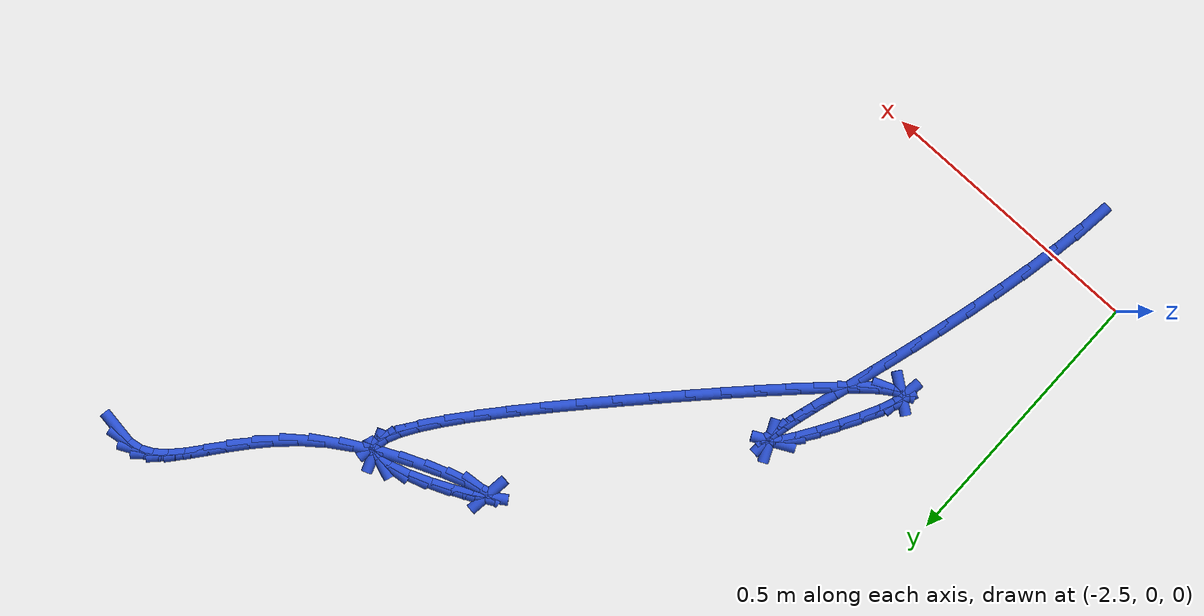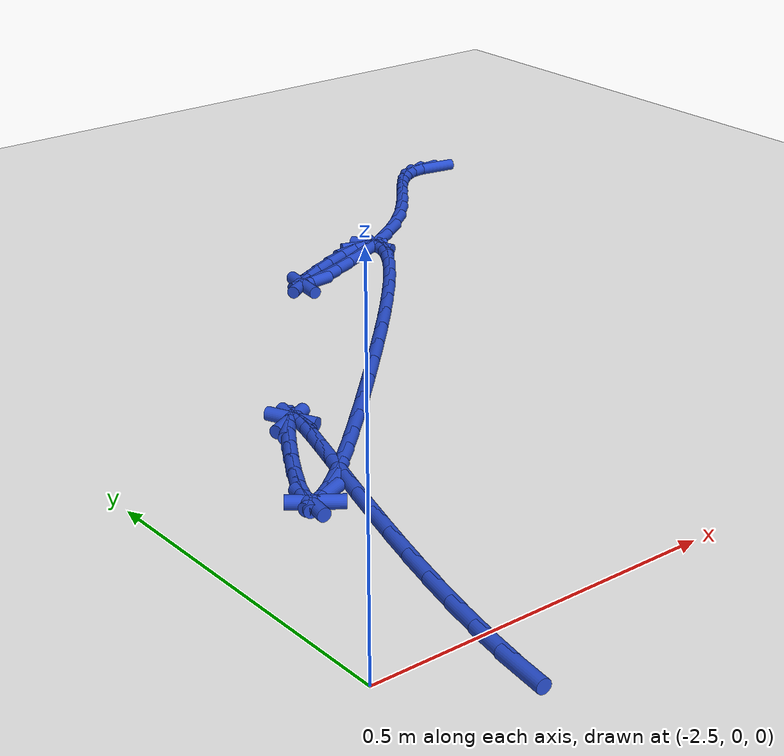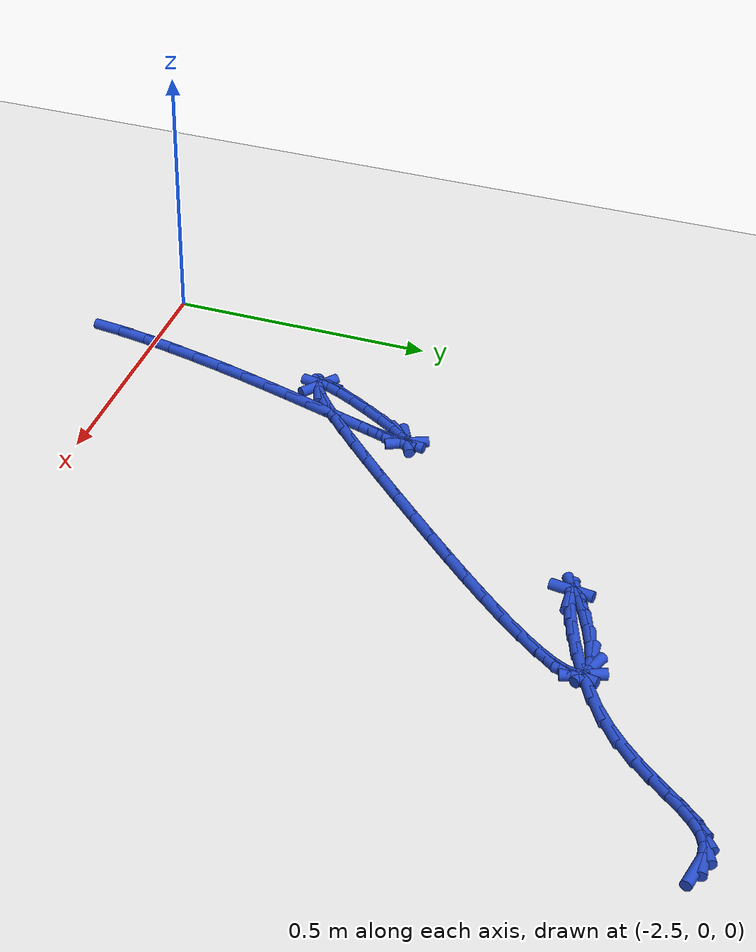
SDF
<sdf version="1.6">
 <world name="default">
  <model name="ground_plane">
   <static>1</static>
   <link name="link">
    <collision name="collision">
     <geometry><plane><normal>0 0 1</normal><size>100 100</size></plane></geometry>
     <surface><friction><ode><mu>100</mu><mu2>50</mu2></ode></friction></surface>
    </collision>
    <visual name="visual">
     <cast_shadows>0</cast_shadows>
     <geometry><plane><normal>0 0 1</normal><size>100 100</size></plane></geometry>
     <material>
      <script><uri>file://media/materials/scripts/gazebo.material</uri><name>Gazebo/WhiteGlow</name></script>
     </material>
    </visual>
   </link>
  </model>
  <model name="line">
   <link name="link_68">
    <pose>-1.3350973054093536 1.3106945747411376 0.01 0 1.57 -0.1702562619580545</pose>
    <collision name="collision">
     <geometry><cylinder><radius>0.01</radius><length>0.08</length></cylinder></geometry>
    </collision>
    <visual name="visual">
     <material>
      <script><name>Gazebo/Blue</name><uri>file://media/materials/scripts/gazebo.material</uri></script>
     </material>
     <geometry><cylinder><radius>0.01</radius><length>0.08</length></cylinder></geometry>
    </visual>
   </link>
   <link name="link_69">
    <pose>-1.3612721494354727 1.3151945708552326 0.01 0 1.57 0.12736923555929164</pose>
    <collision name="collision">
     <geometry><cylinder><radius>0.01</radius><length>0.08</length></cylinder></geometry>
    </collision>
    <visual name="visual">
     <material>
      <script><name>Gazebo/Blue</name><uri>file://media/materials/scripts/gazebo.material</uri></script>
     </material>
     <geometry><cylinder><radius>0.01</radius><length>0.08</length></cylinder></geometry>
    </visual>
   </link>
   <link name="link_70">
    <pose>-1.3851577878362082 1.3121357162470983 0.01 0 1.57 0.4457632040662082</pose>
    <collision name="collision">
     <geometry><cylinder><radius>0.01</radius><length>0.08</length></cylinder></geometry>
    </collision>
    <visual name="visual">
     <material>
      <script><name>Gazebo/Blue</name><uri>file://media/materials/scripts/gazebo.material</uri></script>
     </material>
     <geometry><cylinder><radius>0.01</radius><length>0.08</length></cylinder></geometry>
    </visual>
   </link>
   <link name="link_71">
    <pose>-1.4071448924169663 1.3016293918662203 0.01 0 1.57 0.6769019145013381</pose>
    <collision name="collision">
     <geometry><cylinder><radius>0.01</radius><length>0.08</length></cylinder></geometry>
    </collision>
    <visual name="visual">
     <material>
      <script><name>Gazebo/Blue</name><uri>file://media/materials/scripts/gazebo.material</uri></script>
     </material>
     <geometry><cylinder><radius>0.01</radius><length>0.08</length></cylinder></geometry>
    </visual>
   </link>
   <link name="link_72">
    <pose>-1.4281467614833094 1.2847533370910302 0.01 0 1.57 0.8132384338599417</pose>
    <collision name="collision">
     <geometry><cylinder><radius>0.01</radius><length>0.08</length></cylinder></geometry>
    </collision>
    <visual name="visual">
     <material>
      <script><name>Gazebo/Blue</name><uri>file://media/materials/scripts/gazebo.material</uri></script>
     </material>
     <geometry><cylinder><radius>0.01</radius><length>0.08</length></cylinder></geometry>
    </visual>
   </link>
   <link name="link_73">
    <pose>-1.4490901231234126 1.2626101235341154 0.01 0 1.57 0.8785664679247477</pose>
    <collision name="collision">
     <geometry><cylinder><radius>0.01</radius><length>0.08</length></cylinder></geometry>
    </collision>
    <visual name="visual">
     <material>
      <script><name>Gazebo/Blue</name><uri>file://media/materials/scripts/gazebo.material</uri></script>
     </material>
     <geometry><cylinder><radius>0.01</radius><length>0.08</length></cylinder></geometry>
    </visual>
   </link>
   <link name="link_74">
    <pose>-1.470901705425451 1.2363023228080614 0.01 0 1.57 0.8937617831276791</pose>
    <collision name="collision">
     <geometry><cylinder><radius>0.01</radius><length>0.08</length></cylinder></geometry>
    </collision>
    <visual name="visual">
     <material>
      <script><name>Gazebo/Blue</name><uri>file://media/materials/scripts/gazebo.material</uri></script>
     </material>
     <geometry><cylinder><radius>0.01</radius><length>0.08</length></cylinder></geometry>
    </visual>
   </link>
   <link name="link_75">
    <pose>-1.4945082364776003 1.2069325065254557 0.01 0 1.57 0.8719189081028719</pose>
    <collision name="collision">
     <geometry><cylinder><radius>0.01</radius><length>0.08</length></cylinder></geometry>
    </collision>
    <visual name="visual">
     <material>
      <script><name>Gazebo/Blue</name><uri>file://media/materials/scripts/gazebo.material</uri></script>
     </material>
     <geometry><cylinder><radius>0.01</radius><length>0.08</length></cylinder></geometry>
    </visual>
   </link>
   <link name="link_76">
    <pose>-1.5208364443680358 1.175603246298886 0.01 0 1.57 0.8209273206403028</pose>
    <collision name="collision">
     <geometry><cylinder><radius>0.01</radius><length>0.08</length></cylinder></geometry>
    </collision>
    <visual name="visual">
     <material>
      <script><name>Gazebo/Blue</name><uri>file://media/materials/scripts/gazebo.material</uri></script>
     </material>
     <geometry><cylinder><radius>0.01</radius><length>0.08</length></cylinder></geometry>
    </visual>
   </link>
   <link name="link_77">
    <pose>-1.5508130571849326 1.1434171137409364 0.01 0 1.57 0.7461458583727737</pose>
    <collision name="collision">
     <geometry><cylinder><radius>0.01</radius><length>0.08</length></cylinder></geometry>
    </collision>
    <visual name="visual">
     <material>
      <script><name>Gazebo/Blue</name><uri>file://media/materials/scripts/gazebo.material</uri></script>
     </material>
     <geometry><cylinder><radius>0.01</radius><length>0.08</length></cylinder></geometry>
    </visual>
   </link>
   <link name="link_78">
    <pose>-1.5853648030164664 1.1114766804641956 0.01 0 1.57 0.652318640092156</pose>
    <collision name="collision">
     <geometry><cylinder><radius>0.01</radius><length>0.08</length></cylinder></geometry>
    </collision>
    <visual name="visual">
     <material>
      <script><name>Gazebo/Blue</name><uri>file://media/materials/scripts/gazebo.material</uri></script>
     </material>
     <geometry><cylinder><radius>0.01</radius><length>0.08</length></cylinder></geometry>
    </visual>
   </link>
   <link name="link_79">
    <pose>-1.6254143857306464 1.080884026823018 0.01 0 1.57 0.557162237522482</pose>
    <collision name="collision">
     <geometry><cylinder><radius>0.01</radius><length>0.08</length></cylinder></geometry>
    </collision>
    <visual name="visual">
     <material>
      <script><name>Gazebo/Blue</name><uri>file://media/materials/scripts/gazebo.material</uri></script>
     </material>
     <geometry><cylinder><radius>0.01</radius><length>0.08</length></cylinder></geometry>
    </visual>
   </link>
   <link name="link_80">
    <pose>-1.6707997255913554 1.0526088077941178 0.01 0 1.57 0.4849428474515673</pose>
    <collision name="collision">
     <geometry><cylinder><radius>0.01</radius><length>0.08</length></cylinder></geometry>
    </collision>
    <visual name="visual">
     <material>
      <script><name>Gazebo/Blue</name><uri>file://media/materials/scripts/gazebo.material</uri></script>
     </material>
     <geometry><cylinder><radius>0.01</radius><length>0.08</length></cylinder></geometry>
    </visual>
   </link>
   <link name="link_81">
    <pose>-1.7188133773173808 1.0273099518717472 0.01 0 1.57 0.4281146502719504</pose>
    <collision name="collision">
     <geometry><cylinder><radius>0.01</radius><length>0.08</length></cylinder></geometry>
    </collision>
    <visual name="visual">
     <material>
      <script><name>Gazebo/Blue</name><uri>file://media/materials/scripts/gazebo.material</uri></script>
     </material>
     <geometry><cylinder><radius>0.01</radius><length>0.08</length></cylinder></geometry>
    </visual>
   </link>
   <link name="link_82">
    <pose>-1.766383234428024 1.0056018713933235 0.01 0 1.57 0.378181644333244</pose>
    <collision name="collision">
     <geometry><cylinder><radius>0.01</radius><length>0.08</length></cylinder></geometry>
    </collision>
    <visual name="visual">
     <material>
      <script><name>Gazebo/Blue</name><uri>file://media/materials/scripts/gazebo.material</uri></script>
     </material>
     <geometry><cylinder><radius>0.01</radius><length>0.08</length></cylinder></geometry>
    </visual>
   </link>
   <link name="link_83">
    <pose>-1.810437190442585 0.9880989786962638 0.01 0 1.57 0.3264189245833968</pose>
    <collision name="collision">
     <geometry><cylinder><radius>0.01</radius><length>0.08</length></cylinder></geometry>
    </collision>
    <visual name="visual">
     <material>
      <script><name>Gazebo/Blue</name><uri>file://media/materials/scripts/gazebo.material</uri></script>
     </material>
     <geometry><cylinder><radius>0.01</radius><length>0.08</length></cylinder></geometry>
    </visual>
   </link>
   <link name="link_84">
    <pose>-1.8479031388803657 0.9754156861179856 0.01 0 1.57 0.2550336951135034</pose>
    <collision name="collision">
     <geometry><cylinder><radius>0.01</radius><length>0.08</length></cylinder></geometry>
    </collision>
    <visual name="visual">
     <material>
      <script><name>Gazebo/Blue</name><uri>file://media/materials/scripts/gazebo.material</uri></script>
     </material>
     <geometry><cylinder><radius>0.01</radius><length>0.08</length></cylinder></geometry>
    </visual>
   </link>
   <link name="link_85">
    <pose>-1.8757089732606678 0.9681664059959068 0.01 0 1.57 0.07949815419244698</pose>
    <collision name="collision">
     <geometry><cylinder><radius>0.01</radius><length>0.08</length></cylinder></geometry>
    </collision>
    <visual name="visual">
     <material>
      <script><name>Gazebo/Blue</name><uri>file://media/materials/scripts/gazebo.material</uri></script>
     </material>
     <geometry><cylinder><radius>0.01</radius><length>0.08</length></cylinder></geometry>
    </visual>
   </link>
   <link name="link_86">
    <pose>-1.8907825871027912 0.9669655506674435 0.01 0 1.57 1.437804291611866</pose>
    <collision name="collision">
     <geometry><cylinder><radius>0.01</radius><length>0.08</length></cylinder></geometry>
    </collision>
    <visual name="visual">
     <material>
      <script><name>Gazebo/Blue</name><uri>file://media/materials/scripts/gazebo.material</uri></script>
     </material>
     <geometry><cylinder><radius>0.01</radius><length>0.08</length></cylinder></geometry>
    </visual>
   </link>
   <link name="link_87">
    <pose>-1.890051873926039 0.9724275324700142 0.01 0 1.57 0.5877394359640918</pose>
    <collision name="collision">
     <geometry><cylinder><radius>0.01</radius><length>0.08</length></cylinder></geometry>
    </collision>
    <visual name="visual">
     <material>
      <script><name>Gazebo/Blue</name><uri>file://media/materials/scripts/gazebo.material</uri></script>
     </material>
     <geometry><cylinder><radius>0.01</radius><length>0.08</length></cylinder></geometry>
    </visual>
   </link>
   <link name="link_88">
    <pose>-1.8717234997290118 0.9846394826409811 0.01 0 1.57 0.48206246042030065</pose>
    <collision name="collision">
     <geometry><cylinder><radius>0.01</radius><length>0.08</length></cylinder></geometry>
    </collision>
    <visual name="visual">
     <material>
      <script><name>Gazebo/Blue</name><uri>file://media/materials/scripts/gazebo.material</uri></script>
     </material>
     <geometry><cylinder><radius>0.01</radius><length>0.08</length></cylinder></geometry>
    </visual>
   </link>
   <link name="link_89">
    <pose>-1.8401992689408937 1.00113406752302 0.01 0 1.57 0.42797350168837456</pose>
    <collision name="collision">
     <geometry><cylinder><radius>0.01</radius><length>0.08</length></cylinder></geometry>
    </collision>
    <visual name="visual">
     <material>
      <script><name>Gazebo/Blue</name><uri>file://media/materials/scripts/gazebo.material</uri></script>
     </material>
     <geometry><cylinder><radius>0.01</radius><length>0.08</length></cylinder></geometry>
    </visual>
   </link>
   <link name="link_90">
    <pose>-1.801754475868277 1.0186714502813512 0.01 0 1.57 0.3739684753368205</pose>
    <collision name="collision">
     <geometry><cylinder><radius>0.01</radius><length>0.08</length></cylinder></geometry>
    </collision>
    <visual name="visual">
     <material>
      <script><name>Gazebo/Blue</name><uri>file://media/materials/scripts/gazebo.material</uri></script>
     </material>
     <geometry><cylinder><radius>0.01</radius><length>0.08</length></cylinder></geometry>
    </visual>
   </link>
   <link name="link_91">
    <pose>-1.762664817651042 1.0340116279794216 0.01 0 1.57 0.2878067374321136</pose>
    <collision name="collision">
     <geometry><cylinder><radius>0.01</radius><length>0.08</length></cylinder></geometry>
    </collision>
    <visual name="visual">
     <material>
      <script><name>Gazebo/Blue</name><uri>file://media/materials/scripts/gazebo.material</uri></script>
     </material>
     <geometry><cylinder><radius>0.01</radius><length>0.08</length></cylinder></geometry>
    </visual>
   </link>
   <link name="link_92">
    <pose>-1.7291991728930904 1.0439183213049854 0.01 0 1.57 0.09662714299805618</pose>
    <collision name="collision">
     <geometry><cylinder><radius>0.01</radius><length>0.08</length></cylinder></geometry>
    </collision>
    <visual name="visual">
     <material>
      <script><name>Gazebo/Blue</name><uri>file://media/materials/scripts/gazebo.material</uri></script>
     </material>
     <geometry><cylinder><radius>0.01</radius><length>0.08</length></cylinder></geometry>
    </visual>
   </link>
   <link name="link_93">
    <pose>-1.7057249403121948 1.0461936551945799 0.01 0 1.57 -0.3586536361080069</pose>
    <collision name="collision">
     <geometry><cylinder><radius>0.01</radius><length>0.08</length></cylinder></geometry>
    </collision>
    <visual name="visual">
     <material>
      <script><name>Gazebo/Blue</name><uri>file://media/materials/scripts/gazebo.material</uri></script>
     </material>
     <geometry><cylinder><radius>0.01</radius><length>0.08</length></cylinder></geometry>
    </visual>
   </link>
   <link name="link_94">
    <pose>-1.6921176941901852 1.0410927542788644 0.01 0 1.57 -1.2074080739607462</pose>
    <collision name="collision">
     <geometry><cylinder><radius>0.01</radius><length>0.08</length></cylinder></geometry>
    </collision>
    <visual name="visual">
     <material>
      <script><name>Gazebo/Blue</name><uri>file://media/materials/scripts/gazebo.material</uri></script>
     </material>
     <geometry><cylinder><radius>0.01</radius><length>0.08</length></cylinder></geometry>
    </visual>
   </link>
   <link name="link_95">
    <pose>-1.6876046086852141 1.0292248365703156 0.01 0 1.57 1.3625904140321572</pose>
    <collision name="collision">
     <geometry><cylinder><radius>0.01</radius><length>0.08</length></cylinder></geometry>
    </collision>
    <visual name="visual">
     <material>
      <script><name>Gazebo/Blue</name><uri>file://media/materials/scripts/gazebo.material</uri></script>
     </material>
     <geometry><cylinder><radius>0.01</radius><length>0.08</length></cylinder></geometry>
    </visual>
   </link>
   <link name="link_96">
    <pose>-1.6914128579554344 1.0111991200814106 0.01 0 1.57 1.121860512650516</pose>
    <collision name="collision">
     <geometry><cylinder><radius>0.01</radius><length>0.08</length></cylinder></geometry>
    </collision>
    <visual name="visual">
     <material>
      <script><name>Gazebo/Blue</name><uri>file://media/materials/scripts/gazebo.material</uri></script>
     </material>
     <geometry><cylinder><radius>0.01</radius><length>0.08</length></cylinder></geometry>
    </visual>
   </link>
   <link name="link_97">
    <pose>-1.7027696161589996 0.9876248228246249 0.01 0 1.57 1.0043820728874466</pose>
    <collision name="collision">
     <geometry><cylinder><radius>0.01</radius><length>0.08</length></cylinder></geometry>
    </collision>
    <visual name="visual">
     <material>
      <script><name>Gazebo/Blue</name><uri>file://media/materials/scripts/gazebo.material</uri></script>
     </material>
     <geometry><cylinder><radius>0.01</radius><length>0.08</length></cylinder></geometry>
    </visual>
   </link>
   <link name="link_98">
    <pose>-1.7209020574540614 0.9591111628124356 0.01 0 1.57 0.9370613674079857</pose>
    <collision name="collision">
     <geometry><cylinder><radius>0.01</radius><length>0.08</length></cylinder></geometry>
    </collision>
    <visual name="visual">
     <material>
      <script><name>Gazebo/Blue</name><uri>file://media/materials/scripts/gazebo.material</uri></script>
     </material>
     <geometry><cylinder><radius>0.01</radius><length>0.08</length></cylinder></geometry>
    </visual>
   </link>
   <link name="link_99">
    <pose>-1.7450373559987729 0.926267358057319 0.01 0 1.57 0.894164770032132</pose>
    <collision name="collision">
     <geometry><cylinder><radius>0.01</radius><length>0.08</length></cylinder></geometry>
    </collision>
    <visual name="visual">
     <material>
      <script><name>Gazebo/Blue</name><uri>file://media/materials/scripts/gazebo.material</uri></script>
     </material>
     <geometry><cylinder><radius>0.01</radius><length>0.08</length></cylinder></geometry>
    </visual>
   </link>
   <link name="link_100">
    <pose>-1.7744026859512871 0.8897026265717515 0.01 0 1.57 0.8648764615963829</pose>
    <collision name="collision">
     <geometry><cylinder><radius>0.01</radius><length>0.08</length></cylinder></geometry>
    </collision>
    <visual name="visual">
     <material>
      <script><name>Gazebo/Blue</name><uri>file://media/materials/scripts/gazebo.material</uri></script>
     </material>
     <geometry><cylinder><radius>0.01</radius><length>0.08</length></cylinder></geometry>
    </visual>
   </link>
   <link name="link_101">
    <pose>-1.8082252214697565 0.8500261863682103 0.01 0 1.57 0.8439615534080173</pose>
    <collision name="collision">
     <geometry><cylinder><radius>0.01</radius><length>0.08</length></cylinder></geometry>
    </collision>
    <visual name="visual">
     <material>
      <script><name>Gazebo/Blue</name><uri>file://media/materials/scripts/gazebo.material</uri></script>
     </material>
     <geometry><cylinder><radius>0.01</radius><length>0.08</length></cylinder></geometry>
    </visual>
   </link>
   <link name="link_102">
    <pose>-1.8457321367123347 0.8078472554591709 0.01 0 1.57 0.8286154717612767</pose>
    <collision name="collision">
     <geometry><cylinder><radius>0.01</radius><length>0.08</length></cylinder></geometry>
    </collision>
    <visual name="visual">
     <material>
      <script><name>Gazebo/Blue</name><uri>file://media/materials/scripts/gazebo.material</uri></script>
     </material>
     <geometry><cylinder><radius>0.01</radius><length>0.08</length></cylinder></geometry>
    </visual>
   </link>
   <link name="link_103">
    <pose>-1.8861506058371738 0.76377505185711 0.01 0 1.57 0.8172262364170614</pose>
    <collision name="collision">
     <geometry><cylinder><radius>0.01</radius><length>0.08</length></cylinder></geometry>
    </collision>
    <visual name="visual">
     <material>
      <script><name>Gazebo/Blue</name><uri>file://media/materials/scripts/gazebo.material</uri></script>
     </material>
     <geometry><cylinder><radius>0.01</radius><length>0.08</length></cylinder></geometry>
    </visual>
   </link>
   <link name="link_104">
    <pose>-1.9287078030024274 0.7184187935745044 0.01 0 1.57 0.8088279751640625</pose>
    <collision name="collision">
     <geometry><cylinder><radius>0.01</radius><length>0.08</length></cylinder></geometry>
    </collision>
    <visual name="visual">
     <material>
      <script><name>Gazebo/Blue</name><uri>file://media/materials/scripts/gazebo.material</uri></script>
     </material>
     <geometry><cylinder><radius>0.01</radius><length>0.08</length></cylinder></geometry>
    </visual>
   </link>
   <link name="link_105">
    <pose>-1.9726309023662472 0.6723876986238303 0.01 0 1.57 0.8028391437492124</pose>
    <collision name="collision">
     <geometry><cylinder><radius>0.01</radius><length>0.08</length></cylinder></geometry>
    </collision>
    <visual name="visual">
     <material>
      <script><name>Gazebo/Blue</name><uri>file://media/materials/scripts/gazebo.material</uri></script>
     </material>
     <geometry><cylinder><radius>0.01</radius><length>0.08</length></cylinder></geometry>
    </visual>
   </link>
   <link name="link_106">
    <pose>-2.017147078086786 0.6262909850175643 0.01 0 1.57 0.7984714207825216</pose>
    <collision name="collision">
     <geometry><cylinder><radius>0.01</radius><length>0.08</length></cylinder></geometry>
    </collision>
    <visual name="visual">
     <material>
      <script><name>Gazebo/Blue</name><uri>file://media/materials/scripts/gazebo.material</uri></script>
     </material>
     <geometry><cylinder><radius>0.01</radius><length>0.08</length></cylinder></geometry>
    </visual>
   </link>
   <link name="link_107">
    <pose>-2.061478427583553 0.5807851033612885 0.01 0 1.57 0.7928958342150697</pose>
    <collision name="collision">
     <geometry><cylinder><radius>0.01</radius><length>0.08</length></cylinder></geometry>
    </collision>
    <visual name="visual">
     <material>
      <script><name>Gazebo/Blue</name><uri>file://media/materials/scripts/gazebo.material</uri></script>
     </material>
     <geometry><cylinder><radius>0.01</radius><length>0.08</length></cylinder></geometry>
    </visual>
   </link>
   <link name="link_108">
    <pose>-2.1048187292050753 0.5367899771810107 0.01 0 1.57 0.7846742248726606</pose>
    <collision name="collision">
     <geometry><cylinder><radius>0.01</radius><length>0.08</length></cylinder></geometry>
    </collision>
    <visual name="visual">
     <material>
      <script><name>Gazebo/Blue</name><uri>file://media/materials/scripts/gazebo.material</uri></script>
     </material>
     <geometry><cylinder><radius>0.01</radius><length>0.08</length></cylinder></geometry>
    </visual>
   </link>
   <link name="link_109">
    <pose>-2.146351945637944 0.4953168522469569 0.01 0 1.57 0.7727729731272469</pose>
    <collision name="collision">
     <geometry><cylinder><radius>0.01</radius><length>0.08</length></cylinder></geometry>
    </collision>
    <visual name="visual">
     <material>
      <script><name>Gazebo/Blue</name><uri>file://media/materials/scripts/gazebo.material</uri></script>
     </material>
     <geometry><cylinder><radius>0.01</radius><length>0.08</length></cylinder></geometry>
    </visual>
   </link>
   <link name="link_110">
    <pose>-2.1852620299577055 0.4573770637478947 0.01 0 1.57 0.7552648694851226</pose>
    <collision name="collision">
     <geometry><cylinder><radius>0.01</radius><length>0.08</length></cylinder></geometry>
    </collision>
    <visual name="visual">
     <material>
      <script><name>Gazebo/Blue</name><uri>file://media/materials/scripts/gazebo.material</uri></script>
     </material>
     <geometry><cylinder><radius>0.01</radius><length>0.08</length></cylinder></geometry>
    </visual>
   </link>
   <link name="link_111">
    <pose>-2.2207329352399046 0.4239819468725913 0.01 0 1.57 0.7282834579382008</pose>
    <collision name="collision">
     <geometry><cylinder><radius>0.01</radius><length>0.08</length></cylinder></geometry>
    </collision>
    <visual name="visual">
     <material>
      <script><name>Gazebo/Blue</name><uri>file://media/materials/scripts/gazebo.material</uri></script>
     </material>
     <geometry><cylinder><radius>0.01</radius><length>0.08</length></cylinder></geometry>
    </visual>
   </link>
   <link name="link_112">
    <pose>-2.251948614560089 0.39614283680981377 0.01 0 1.57 0.6829944129559297</pose>
    <collision name="collision">
     <geometry><cylinder><radius>0.01</radius><length>0.08</length></cylinder></geometry>
    </collision>
    <visual name="visual">
     <material>
      <script><name>Gazebo/Blue</name><uri>file://media/materials/scripts/gazebo.material</uri></script>
     </material>
     <geometry><cylinder><radius>0.01</radius><length>0.08</length></cylinder></geometry>
    </visual>
   </link>
   <link name="link_113">
    <pose>-2.2780930209938037 0.3748710687483293 0.01 0 1.57 0.5944126310920766</pose>
    <collision name="collision">
     <geometry><cylinder><radius>0.01</radius><length>0.08</length></cylinder></geometry>
    </collision>
    <visual name="visual">
     <material>
      <script><name>Gazebo/Blue</name><uri>file://media/materials/scripts/gazebo.material</uri></script>
     </material>
     <geometry><cylinder><radius>0.01</radius><length>0.08</length></cylinder></geometry>
    </visual>
   </link>
   <link name="link_114">
    <pose>-2.298350107616596 0.3611779778769047 0.01 0 1.57 0.3600917427748077</pose>
    <collision name="collision">
     <geometry><cylinder><radius>0.01</radius><length>0.08</length></cylinder></geometry>
    </collision>
    <visual name="visual">
     <material>
      <script><name>Gazebo/Blue</name><uri>file://media/materials/scripts/gazebo.material</uri></script>
     </material>
     <geometry><cylinder><radius>0.01</radius><length>0.08</length></cylinder></geometry>
    </visual>
   </link>
   <link name="link_115">
    <pose>-2.3119038275040116 0.35607489938430714 0.01 0 1.57 -0.6405822637403422</pose>
    <collision name="collision">
     <geometry><cylinder><radius>0.01</radius><length>0.08</length></cylinder></geometry>
    </collision>
    <visual name="visual">
     <material>
      <script><name>Gazebo/Blue</name><uri>file://media/materials/scripts/gazebo.material</uri></script>
     </material>
     <geometry><cylinder><radius>0.01</radius><length>0.08</length></cylinder></geometry>
    </visual>
   </link>
   <link name="link_116">
    <pose>-2.317938133731597 0.36057316845930376 0.01 0 1.57 1.4197157445327446</pose>
    <collision name="collision">
     <geometry><cylinder><radius>0.01</radius><length>0.08</length></cylinder></geometry>
    </collision>
    <visual name="visual">
     <material>
      <script><name>Gazebo/Blue</name><uri>file://media/materials/scripts/gazebo.material</uri></script>
     </material>
     <geometry><cylinder><radius>0.01</radius><length>0.08</length></cylinder></geometry>
    </visual>
   </link>
   <link name="link_117">
    <pose>-2.3156378178998147 0.37568290178907193 0.01 0 1.57 1.1759806474920604</pose>
    <collision name="collision">
     <geometry><cylinder><radius>0.01</radius><length>0.08</length></cylinder></geometry>
    </collision>
    <visual name="visual">
     <material>
      <script><name>Gazebo/Blue</name><uri>file://media/materials/scripts/gazebo.material</uri></script>
     </material>
     <geometry><cylinder><radius>0.01</radius><length>0.08</length></cylinder></geometry>
    </visual>
   </link>
   <link name="link_118">
    <pose>-2.3049768843988563 0.40126737233641696 0.01 0 1.57 1.0957023036938187</pose>
    <collision name="collision">
     <geometry><cylinder><radius>0.01</radius><length>0.08</length></cylinder></geometry>
    </collision>
    <visual name="visual">
     <material>
      <script><name>Gazebo/Blue</name><uri>file://media/materials/scripts/gazebo.material</uri></script>
     </material>
     <geometry><cylinder><radius>0.01</radius><length>0.08</length></cylinder></geometry>
    </visual>
   </link>
   <link name="link_119">
    <pose>-2.288184053636705 0.4339134148856184 0.01 0 1.57 1.0540077608567002</pose>
    <collision name="collision">
     <geometry><cylinder><radius>0.01</radius><length>0.08</length></cylinder></geometry>
    </collision>
    <visual name="visual">
     <material>
      <script><name>Gazebo/Blue</name><uri>file://media/materials/scripts/gazebo.material</uri></script>
     </material>
     <geometry><cylinder><radius>0.01</radius><length>0.08</length></cylinder></geometry>
    </visual>
   </link>
   <link name="link_120">
    <pose>-2.2678880951459686 0.46962653326181175 0.01 0 1.57 1.0240827179628935</pose>
    <collision name="collision">
     <geometry><cylinder><radius>0.01</radius><length>0.08</length></cylinder></geometry>
    </collision>
    <visual name="visual">
     <material>
      <script><name>Gazebo/Blue</name><uri>file://media/materials/scripts/gazebo.material</uri></script>
     </material>
     <geometry><cylinder><radius>0.01</radius><length>0.08</length></cylinder></geometry>
    </visual>
   </link>
   <link name="link_121">
    <pose>-2.2467177784592605 0.5044122312901332 0.01 0 1.57 0.9943164230556358</pose>
    <collision name="collision">
     <geometry><cylinder><radius>0.01</radius><length>0.08</length></cylinder></geometry>
    </collision>
    <visual name="visual">
     <material>
      <script><name>Gazebo/Blue</name><uri>file://media/materials/scripts/gazebo.material</uri></script>
     </material>
     <geometry><cylinder><radius>0.01</radius><length>0.08</length></cylinder></geometry>
    </visual>
   </link>
   <link name="link_122">
    <pose>-2.227301873109191 0.5342760127957181 0.01 0 1.57 0.9489629614297959</pose>
    <collision name="collision">
     <geometry><cylinder><radius>0.01</radius><length>0.08</length></cylinder></geometry>
    </collision>
    <visual name="visual">
     <material>
      <script><name>Gazebo/Blue</name><uri>file://media/materials/scripts/gazebo.material</uri></script>
     </material>
     <geometry><cylinder><radius>0.01</radius><length>0.08</length></cylinder></geometry>
    </visual>
   </link>
   <link name="link_123">
    <pose>-2.2120441900095384 0.5555653950068998 0.01 0 1.57 0.8448970271386356</pose>
    <collision name="collision">
     <geometry><cylinder><radius>0.01</radius><length>0.08</length></cylinder></geometry>
    </collision>
    <visual name="visual">
     <material>
      <script><name>Gazebo/Blue</name><uri>file://media/materials/scripts/gazebo.material</uri></script>
     </material>
     <geometry><cylinder><radius>0.01</radius><length>0.08</length></cylinder></geometry>
    </visual>
   </link>
   <link name="link_124">
    <pose>-2.2014820370293107 0.5674656128697573 0.01 0 1.57 0.4603190550973021</pose>
    <collision name="collision">
     <geometry><cylinder><radius>0.01</radius><length>0.08</length></cylinder></geometry>
    </collision>
    <visual name="visual">
     <material>
      <script><name>Gazebo/Blue</name><uri>file://media/materials/scripts/gazebo.material</uri></script>
     </material>
     <geometry><cylinder><radius>0.01</radius><length>0.08</length></cylinder></geometry>
    </visual>
   </link>
   <link name="link_125">
    <pose>-2.1952291118478784 0.5705661020932765 0.01 0 1.57 -1.1411673160636104</pose>
    <collision name="collision">
     <geometry><cylinder><radius>0.01</radius><length>0.08</length></cylinder></geometry>
    </collision>
    <visual name="visual">
     <material>
      <script><name>Gazebo/Blue</name><uri>file://media/materials/scripts/gazebo.material</uri></script>
     </material>
     <geometry><cylinder><radius>0.01</radius><length>0.08</length></cylinder></geometry>
    </visual>
   </link>
   <link name="link_126">
    <pose>-2.192892528484894 0.5654663077822875 0.01 0 1.57 1.4776170693136244</pose>
    <collision name="collision">
     <geometry><cylinder><radius>0.01</radius><length>0.08</length></cylinder></geometry>
    </collision>
    <visual name="visual">
     <material>
      <script><name>Gazebo/Blue</name><uri>file://media/materials/scripts/gazebo.material</uri></script>
     </material>
     <geometry><cylinder><radius>0.01</radius><length>0.08</length></cylinder></geometry>
    </visual>
   </link>
   <link name="link_127">
    <pose>-2.194079400960012 0.552765675041621 0.01 0 1.57 1.3550693566135341</pose>
    <collision name="collision">
     <geometry><cylinder><radius>0.01</radius><length>0.08</length></cylinder></geometry>
    </collision>
    <visual name="visual">
     <material>
      <script><name>Gazebo/Blue</name><uri>file://media/materials/scripts/gazebo.material</uri></script>
     </material>
     <geometry><cylinder><radius>0.01</radius><length>0.08</length></cylinder></geometry>
    </visual>
   </link>
   <link name="link_128">
    <pose>-2.1983968432928873 0.5330636489761079 0.01 0 1.57 1.306832673677533</pose>
    <collision name="collision">
     <geometry><cylinder><radius>0.01</radius><length>0.08</length></cylinder></geometry>
    </collision>
    <visual name="visual">
     <material>
      <script><name>Gazebo/Blue</name><uri>file://media/materials/scripts/gazebo.material</uri></script>
     </material>
     <geometry><cylinder><radius>0.01</radius><length>0.08</length></cylinder></geometry>
    </visual>
   </link>
   <link name="link_129">
    <pose>-2.205451969503173 0.5069596746905787 0.01 0 1.57 1.2842930384472644</pose>
    <collision name="collision">
     <geometry><cylinder><radius>0.01</radius><length>0.08</length></cylinder></geometry>
    </collision>
    <visual name="visual">
     <material>
      <script><name>Gazebo/Blue</name><uri>file://media/materials/scripts/gazebo.material</uri></script>
     </material>
     <geometry><cylinder><radius>0.01</radius><length>0.08</length></cylinder></geometry>
    </visual>
   </link>
   <link name="link_130">
    <pose>-2.2148518936105224 0.4750531972898641 0.01 0 1.57 1.2739347982042226</pose>
    <collision name="collision">
     <geometry><cylinder><radius>0.01</radius><length>0.08</length></cylinder></geometry>
    </collision>
    <visual name="visual">
     <material>
      <script><name>Gazebo/Blue</name><uri>file://media/materials/scripts/gazebo.material</uri></script>
     </material>
     <geometry><cylinder><radius>0.01</radius><length>0.08</length></cylinder></geometry>
    </visual>
   </link>
   <link name="link_131">
    <pose>-2.226203729634589 0.43794366187879474 0.01 0 1.57 1.2706328264656723</pose>
    <collision name="collision">
     <geometry><cylinder><radius>0.01</radius><length>0.08</length></cylinder></geometry>
    </collision>
    <visual name="visual">
     <material>
      <script><name>Gazebo/Blue</name><uri>file://media/materials/scripts/gazebo.material</uri></script>
     </material>
     <geometry><cylinder><radius>0.01</radius><length>0.08</length></cylinder></geometry>
    </visual>
   </link>
   <link name="link_132">
    <pose>-2.239114591595029 0.3962305135622015 0.01 0 1.57 1.2720948840859325</pose>
    <collision name="collision">
     <geometry><cylinder><radius>0.01</radius><length>0.08</length></cylinder></geometry>
    </collision>
    <visual name="visual">
     <material>
      <script><name>Gazebo/Blue</name><uri>file://media/materials/scripts/gazebo.material</uri></script>
     </material>
     <geometry><cylinder><radius>0.01</radius><length>0.08</length></cylinder></geometry>
    </visual>
   </link>
   <link name="link_133">
    <pose>-2.2531915935114926 0.3505131974449154 0.01 0 1.57 1.2772184013727514</pose>
    <collision name="collision">
     <geometry><cylinder><radius>0.01</radius><length>0.08</length></cylinder></geometry>
    </collision>
    <visual name="visual">
     <material>
      <script><name>Gazebo/Blue</name><uri>file://media/materials/scripts/gazebo.material</uri></script>
     </material>
     <geometry><cylinder><radius>0.01</radius><length>0.08</length></cylinder></geometry>
    </visual>
   </link>
   <link name="link_134">
    <pose>-2.268041849403637 0.30139115863176597 0.01 0 1.57 1.2854915351303764</pose>
    <collision name="collision">
     <geometry><cylinder><radius>0.01</radius><length>0.08</length></cylinder></geometry>
    </collision>
    <visual name="visual">
     <material>
      <script><name>Gazebo/Blue</name><uri>file://media/materials/scripts/gazebo.material</uri></script>
     </material>
     <geometry><cylinder><radius>0.01</radius><length>0.08</length></cylinder></geometry>
    </visual>
   </link>
   <link name="link_135">
    <pose>-2.2832724732911145 0.2494638422275844 0.01 0 1.57 1.2967460104684079</pose>
    <collision name="collision">
     <geometry><cylinder><radius>0.01</radius><length>0.08</length></cylinder></geometry>
    </collision>
    <visual name="visual">
     <material>
      <script><name>Gazebo/Blue</name><uri>file://media/materials/scripts/gazebo.material</uri></script>
     </material>
     <geometry><cylinder><radius>0.01</radius><length>0.08</length></cylinder></geometry>
    </visual>
   </link>
   <link name="link_136">
    <pose>-2.29849057919358 0.1953306933372015 0.01 0 1.57 1.3110512769958897</pose>
    <collision name="collision">
     <geometry><cylinder><radius>0.01</radius><length>0.08</length></cylinder></geometry>
    </collision>
    <visual name="visual">
     <material>
      <script><name>Gazebo/Blue</name><uri>file://media/materials/scripts/gazebo.material</uri></script>
     </material>
     <geometry><cylinder><radius>0.01</radius><length>0.08</length></cylinder></geometry>
    </visual>
   </link>
   <link name="link_137">
    <pose>-2.3133032811306857 0.13959115706544784 0.01 0 1.57 1.3286758702017154</pose>
    <collision name="collision">
     <geometry><cylinder><radius>0.01</radius><length>0.08</length></cylinder></geometry>
    </collision>
    <visual name="visual">
     <material>
      <script><name>Gazebo/Blue</name><uri>file://media/materials/scripts/gazebo.material</uri></script>
     </material>
     <geometry><cylinder><radius>0.01</radius><length>0.08</length></cylinder></geometry>
    </visual>
   </link>
   <link name="link_138">
    <pose>-2.3273176931220876 0.08284467851715413 0.01 0 1.57 1.3500882960059275</pose>
    <collision name="collision">
     <geometry><cylinder><radius>0.01</radius><length>0.08</length></cylinder></geometry>
    </collision>
    <visual name="visual">
     <material>
      <script><name>Gazebo/Blue</name><uri>file://media/materials/scripts/gazebo.material</uri></script>
     </material>
     <geometry><cylinder><radius>0.01</radius><length>0.08</length></cylinder></geometry>
    </visual>
   </link>
   <link name="link_139">
    <pose>-2.3401409291874375 0.025690702797151 0.01 0 1.57 1.3759886982382725</pose>
    <collision name="collision">
     <geometry><cylinder><radius>0.01</radius><length>0.08</length></cylinder></geometry>
    </collision>
    <visual name="visual">
     <material>
      <script><name>Gazebo/Blue</name><uri>file://media/materials/scripts/gazebo.material</uri></script>
     </material>
     <geometry><cylinder><radius>0.01</radius><length>0.08</length></cylinder></geometry>
    </visual>
   </link>
   <link name="link_140">
    <pose>-2.35138010334639 -0.031271324989729996 0.01 0 1.57 1.4073724562261125</pose>
    <collision name="collision">
     <geometry><cylinder><radius>0.01</radius><length>0.08</length></cylinder></geometry>
    </collision>
    <visual name="visual">
     <material>
      <script><name>Gazebo/Blue</name><uri>file://media/materials/scripts/gazebo.material</uri></script>
     </material>
     <geometry><cylinder><radius>0.01</radius><length>0.08</length></cylinder></geometry>
    </visual>
   </link>
   <link name="link_141">
    <pose>-2.360642329618599 -0.08744195973865992 0.01 0 1.57 1.4456340581058038</pose>
    <collision name="collision">
     <geometry><cylinder><radius>0.01</radius><length>0.08</length></cylinder></geometry>
    </collision>
    <visual name="visual">
     <material>
      <script><name>Gazebo/Blue</name><uri>file://media/materials/scripts/gazebo.material</uri></script>
     </material>
     <geometry><cylinder><radius>0.01</radius><length>0.08</length></cylinder></geometry>
    </visual>
   </link>
  </model>
 </world>
</sdf>
